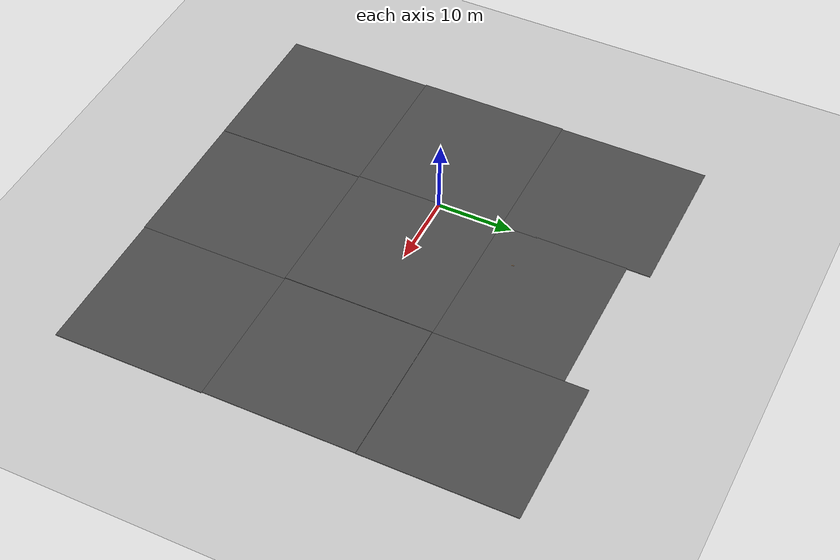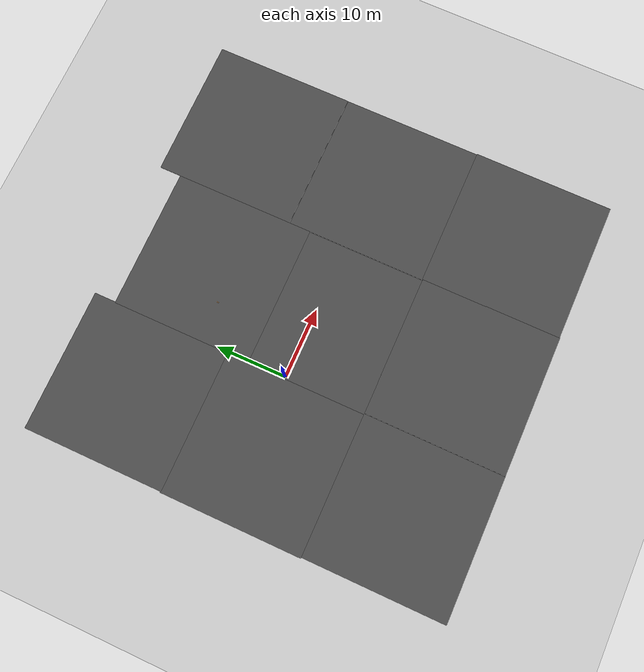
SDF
<sdf version="1.6">
 <world name="default">
  <light name="sun" type="directional">
   <pose>0 0 10 0 -0 0</pose>
   <diffuse>0.8 0.8 0.8 1</diffuse>
   <specular>0.1 0.1 0.1 1</specular>
   <attenuation>
    <range>1000</range>
    <constant>0.9</constant>
    <linear>0.01</linear>
    <quadratic>0.001</quadratic>
   </attenuation>
   <direction>-0.5 0.5 -1</direction>
  </light>
  <model name="ground_plane">
   <static>1</static>
   <link name="link">
    <collision name="collision">
     <geometry><plane><normal>0 0 1</normal><size>100 100</size></plane></geometry>
     <surface><friction><ode><mu>100</mu><mu2>50</mu2></ode></friction></surface>
    </collision>
    <visual name="visual">
     <cast_shadows>0</cast_shadows>
     <geometry><plane><normal>0 0 1</normal><size>100 100</size></plane></geometry>
     <material>
      <script><uri>file://media/materials/scripts/gazebo.material</uri><name>Gazebo/Grey</name></script>
     </material>
    </visual>
   </link>
  </model>
  <gravity>0 0 -9.8</gravity>
  <magnetic_field>6e-06 2.3e-05 -4.2e-05</magnetic_field>
  <atmosphere type="adiabatic"/>
  <physics name="default_physics" default="0" type="ode">
   <max_step_size>0.001</max_step_size>
   <real_time_factor>1</real_time_factor>
   <real_time_update_rate>1000</real_time_update_rate>
  </physics>
  <scene><ambient>0.4 0.4 0.4 1</ambient><background>0.7 0.7 0.7 1</background><shadows>1</shadows></scene>
  <spherical_coordinates>
   <surface_model>EARTH_WGS84</surface_model>
   <latitude_deg>0</latitude_deg>
   <longitude_deg>0</longitude_deg>
   <elevation>0</elevation>
   <heading_deg>0</heading_deg>
  </spherical_coordinates>
  <model name="asphalt_plane">
   <static>1</static>
   <link name="link">
    <collision name="collision"><geometry><box><size>20 20 0.1</size></box></geometry></collision>
    <visual name="visual">
     <cast_shadows>0</cast_shadows>
     <geometry><box><size>20 20 0.1</size></box></geometry>
     <material>
      <script>
       <uri>model://asphalt_plane/materials/scripts</uri>
       <uri>model://asphalt_plane/materials/textures</uri>
       <name>vrc/asphalt</name>
      </script>
     </material>
    </visual>
   </link>
   <pose>9.69834 -1.50235 0 0 -0 0</pose>
  </model>
  <model name="asphalt_plane_0">
   <static>1</static>
   <link name="link">
    <collision name="collision"><geometry><box><size>20 20 0.1</size></box></geometry></collision>
    <visual name="visual">
     <cast_shadows>0</cast_shadows>
     <geometry><box><size>20 20 0.1</size></box></geometry>
     <material>
      <script>
       <uri>model://asphalt_plane/materials/scripts</uri>
       <uri>model://asphalt_plane/materials/textures</uri>
       <name>vrc/asphalt</name>
      </script>
     </material>
    </visual>
   </link>
   <pose>-10.2508 -1.4828 0 0 0 -0.000396</pose>
  </model>
  <model name="asphalt_plane_1">
   <static>1</static>
   <link name="link">
    <collision name="collision"><geometry><box><size>20 20 0.1</size></box></geometry></collision>
    <visual name="visual">
     <cast_shadows>0</cast_shadows>
     <geometry><box><size>20 20 0.1</size></box></geometry>
     <material>
      <script>
       <uri>model://asphalt_plane/materials/scripts</uri>
       <uri>model://asphalt_plane/materials/textures</uri>
       <name>vrc/asphalt</name>
      </script>
     </material>
    </visual>
   </link>
   <pose>29.7475 -1.55715 0 0 -0 0</pose>
  </model>
  <model name="asphalt_plane_2">
   <static>1</static>
   <link name="link">
    <collision name="collision"><geometry><box><size>20 20 0.1</size></box></geometry></collision>
    <visual name="visual">
     <cast_shadows>0</cast_shadows>
     <geometry><box><size>20 20 0.1</size></box></geometry>
     <material>
      <script>
       <uri>model://asphalt_plane/materials/scripts</uri>
       <uri>model://asphalt_plane/materials/textures</uri>
       <name>vrc/asphalt</name>
      </script>
     </material>
    </visual>
   </link>
   <pose>-10.1156 -21.4788 0 0 -0 0</pose>
  </model>
  <model name="asphalt_plane_3">
   <static>1</static>
   <link name="link">
    <collision name="collision"><geometry><box><size>20 20 0.1</size></box></geometry></collision>
    <visual name="visual">
     <cast_shadows>0</cast_shadows>
     <geometry><box><size>20 20 0.1</size></box></geometry>
     <material>
      <script>
       <uri>model://asphalt_plane/materials/scripts</uri>
       <uri>model://asphalt_plane/materials/textures</uri>
       <name>vrc/asphalt</name>
      </script>
     </material>
    </visual>
   </link>
   <pose>9.9116 -21.4629 0 0 -0 0</pose>
  </model>
  <model name="asphalt_plane_4">
   <static>1</static>
   <link name="link">
    <collision name="collision"><geometry><box><size>20 20 0.1</size></box></geometry></collision>
    <visual name="visual">
     <cast_shadows>0</cast_shadows>
     <geometry><box><size>20 20 0.1</size></box></geometry>
     <material>
      <script>
       <uri>model://asphalt_plane/materials/scripts</uri>
       <uri>model://asphalt_plane/materials/textures</uri>
       <name>vrc/asphalt</name>
      </script>
     </material>
    </visual>
   </link>
   <pose>29.8594 -21.3948 0 0 -0 0</pose>
  </model>
  <model name="asphalt_plane_5">
   <static>1</static>
   <link name="link">
    <collision name="collision"><geometry><box><size>20 20 0.1</size></box></geometry></collision>
    <visual name="visual">
     <cast_shadows>0</cast_shadows>
     <geometry><box><size>20 20 0.1</size></box></geometry>
     <material>
      <script>
       <uri>model://asphalt_plane/materials/scripts</uri>
       <uri>model://asphalt_plane/materials/textures</uri>
       <name>vrc/asphalt</name>
      </script>
     </material>
    </visual>
   </link>
   <pose>-10.1184 18.437 0 0 -0 0</pose>
  </model>
  <model name="asphalt_plane_7">
   <static>1</static>
   <link name="link">
    <collision name="collision"><geometry><box><size>20 20 0.1</size></box></geometry></collision>
    <visual name="visual">
     <cast_shadows>0</cast_shadows>
     <geometry><box><size>20 20 0.1</size></box></geometry>
     <material>
      <script>
       <uri>model://asphalt_plane/materials/scripts</uri>
       <uri>model://asphalt_plane/materials/textures</uri>
       <name>vrc/asphalt</name>
      </script>
     </material>
    </visual>
   </link>
   <pose>29.7741 18.4809 0 0 -0 0</pose>
  </model>
  <model name="wooden_board">
   <link name="base">
    <pose>0 0 0.00523 0 -0 0</pose>
    <inertial>
     <mass>0.2765</mass>
     <inertia>
      <ixx>0.0025148</ixx>
      <ixy>0</ixy>
      <ixz>0</ixz>
      <iyy>0.00024037</iyy>
      <iyz>0</iyz>
      <izz>0.00275013</izz>
     </inertia>
    </inertial>
    <collision name="collision">
     <geometry><box><size>0.1016 0.3302 0.01046</size></box></geometry>
     <surface>
      <contact>
       <poissons_ratio>0.347</poissons_ratio>
       <elastic_modulus>8.8e+09</elastic_modulus>
       <ode><kp>100000</kp><kd>100</kd><max_vel>100</max_vel><min_depth>0.001</min_depth></ode>
      </contact>
      <friction>
       <torsional>
        <coefficient>1</coefficient>
        <use_patch_radius>0</use_patch_radius>
        <surface_radius>0.01</surface_radius>
       </torsional>
      </friction>
     </surface>
    </collision>
    <visual name="visual">
     <geometry><box><size>0.1016 0.3302 0.01046</size></box></geometry>
     <material>
      <script><uri>file://media/materials/scripts/gazebo.material</uri><name>Gazebo/Wood</name></script>
     </material>
    </visual>
    <visual name="tee_nut_1">
     <pose>0 -0.116 0 0 -0 0</pose>
     <geometry><cylinder><radius>0.00635</radius><length>0.0105646</length></cylinder></geometry>
     <material>
      <script><uri>file://media/materials/scripts/gazebo.material</uri><name>Gazebo/Grey</name></script>
     </material>
    </visual>
    <visual name="tee_nut_2">
     <pose>0 -0.038 0 0 -0 0</pose>
     <geometry><cylinder><radius>0.00635</radius><length>0.0105646</length></cylinder></geometry>
     <material>
      <script><uri>file://media/materials/scripts/gazebo.material</uri><name>Gazebo/Grey</name></script>
     </material>
    </visual>
    <visual name="tee_nut_3">
     <pose>0 0.038 0 0 -0 0</pose>
     <geometry><cylinder><radius>0.00635</radius><length>0.0105646</length></cylinder></geometry>
     <material>
      <script><uri>file://media/materials/scripts/gazebo.material</uri><name>Gazebo/Grey</name></script>
     </material>
    </visual>
    <visual name="tee_nut_4">
     <pose>0 0.116 0 0 -0 0</pose>
     <geometry><cylinder><radius>0.00635</radius><length>0.0105646</length></cylinder></geometry>
     <material>
      <script><uri>file://media/materials/scripts/gazebo.material</uri><name>Gazebo/Grey</name></script>
     </material>
    </visual>
   </link>
   <pose>5.52681 12.6239 0.048993 0 -0 0</pose>
  </model>
  <model name="asphalt_plane_clone">
   <static>1</static>
   <link name="link">
    <collision name="collision"><geometry><box><size>20 20 0.1</size></box></geometry></collision>
    <visual name="visual">
     <cast_shadows>0</cast_shadows>
     <geometry><box><size>20 20 0.1</size></box></geometry>
     <material>
      <script>
       <uri>model://asphalt_plane/materials/scripts</uri>
       <uri>model://asphalt_plane/materials/textures</uri>
       <name>vrc/asphalt</name>
      </script>
     </material>
    </visual>
   </link>
   <pose>9.77391 15.3802 0 0 -0 0</pose>
  </model>
 </world>
</sdf>
